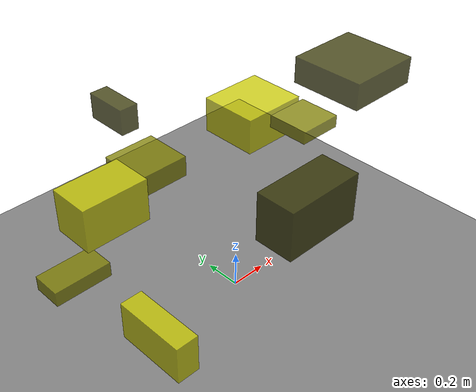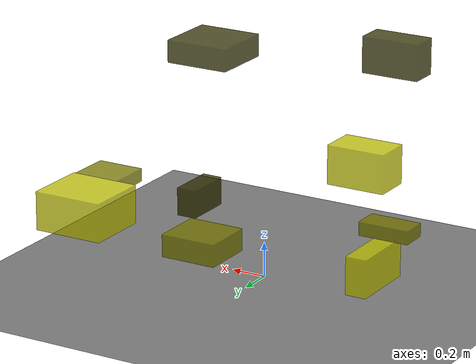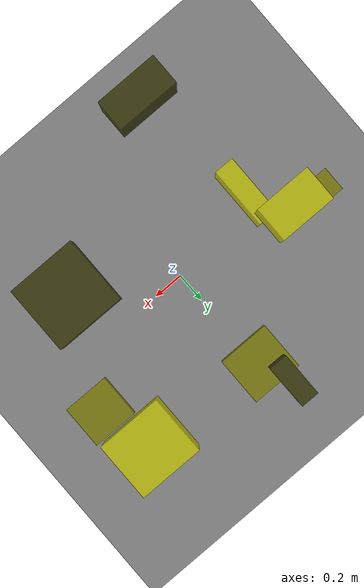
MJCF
<?xml version="1.0"?>
<mujoco model="obstacle_scene">
  <compiler angle="radian" coordinate="local"/>
  <option timestep="0.001" gravity="0 0 -9.81"/>

  <asset>
    <material name="obstacle_mat" rgba="0.8 0.8 0.0 0.8"/>
    <material name="ground_mat" rgba="0.5 0.5 0.5 1"/>
  </asset>

  <worldbody>
    <!-- Ground plane -->
    <geom name="ground" type="plane" size="3 3 0.1" material="ground_mat"/>

    <!-- Obstacles -->
    <body name="obstacle_0" pos="-0.092090 0.834737 0.749659">
      <geom name="obs_0" type="box" size="0.054416 0.130192 0.074991" rgba="0.2 0.2 0.0 0.8"/>
    </body>
    <body name="obstacle_1" pos="-0.863421 0.156997 0.495499">
      <geom name="obs_1" type="box" size="0.146544 0.075893 0.038340" rgba="0.5 0.5 0.0 0.8"/>
    </body>
    <body name="obstacle_2" pos="-0.622737 -0.121886 0.143699">
      <geom name="obs_2" type="box" size="0.063527 0.203793 0.111694" rgba="0.8 0.8 0.0 0.8"/>
    </body>
    <body name="obstacle_3" pos="-0.407121 -0.772950 1.156056">
      <geom name="obs_3" type="box" size="0.173430 0.085634 0.107042" rgba="0.2 0.2 0.0 0.8"/>
    </body>
    <body name="obstacle_4" pos="0.836826 0.300803 0.528386">
      <geom name="obs_4" type="box" size="0.137228 0.130530 0.038001" rgba="0.5 0.5 0.0 0.8"/>
    </body>
    <body name="obstacle_5" pos="-0.690177 0.125808 0.821431">
      <geom name="obs_5" type="box" size="0.167973 0.106188 0.110063" rgba="0.8 0.8 0.0 0.8"/>
    </body>
    <body name="obstacle_6" pos="0.485724 -0.258401 1.192955">
      <geom name="obs_6" type="box" size="0.187373 0.183538 0.065419" rgba="0.2 0.2 0.0 0.8"/>
    </body>
    <body name="obstacle_7" pos="-0.018069 0.688574 0.428195">
      <geom name="obs_7" type="box" size="0.159884 0.148919 0.062786" rgba="0.5 0.5 0.0 0.8"/>
    </body>
    <body name="obstacle_8" pos="0.760263 0.637682 0.467951">
      <geom name="obs_8" type="box" size="0.203700 0.184640 0.111378" rgba="0.8 0.8 0.0 0.8"/>
    </body>
  </worldbody>
</mujoco>
